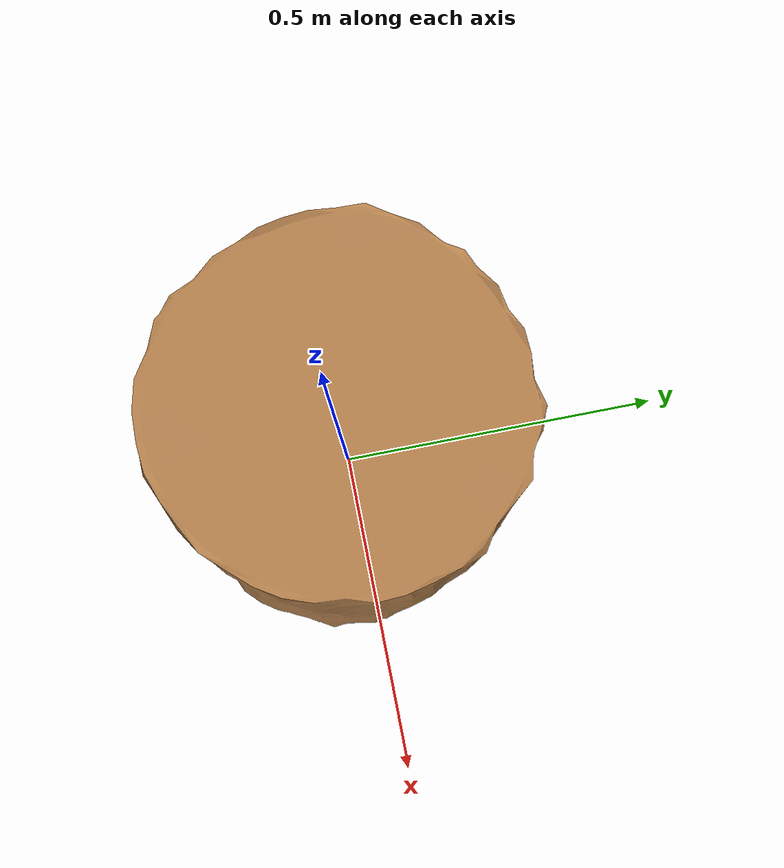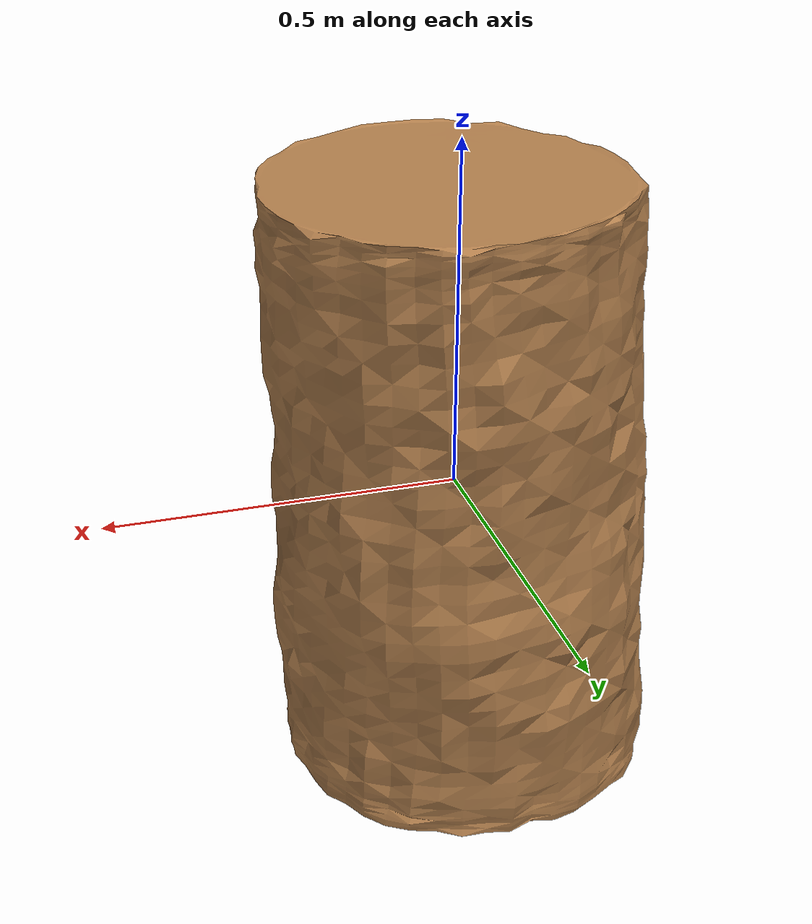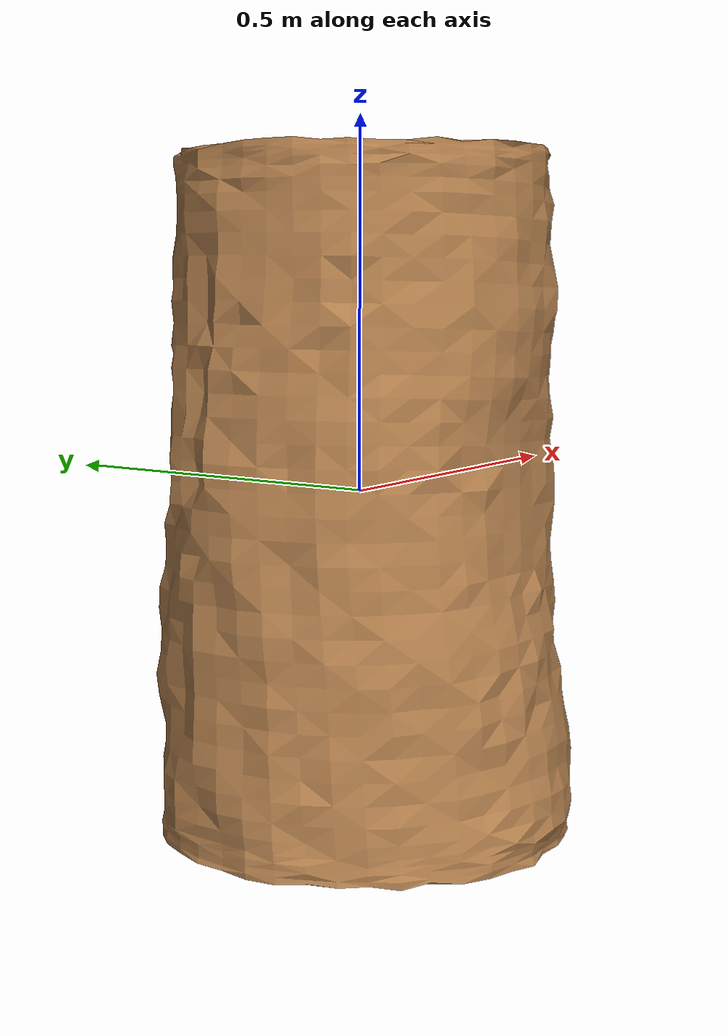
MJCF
<mujoco model="wooden_log">
	<compiler angle="radian" meshdir="../meshes/" texturedir="../textures/" autolimits="true" inertiafromgeom="false"/>
	<asset>
		<texture name="wooden_log_visual" type="2d" file="WoodenLog_Diffuse_8K.png" />
		<material name="wooden_log_visual" texture="wooden_log_visual" />
		<mesh name="WoodenLog" file="obj/WoodenLog.obj" />
		<mesh name="UCX_WoodenLog_001" file="stl/WoodenLog.stl" />
	</asset>
	<default>
		<default class="visual">
			<geom contype="0" conaffinity="0" />
		</default>
		<default class="collision">
			<geom rgba="1.0 0.0 0.0 0.0" />
		</default>
	</default>
	<worldbody>
		<body name="wooden_log">
			<freejoint />
			<inertial mass="182.78973388671875" pos="-0.002206541830673814 -0.003549989778548479 -0.008434557355940342" quat="0.6179027557373047 -0.2879410982131958 0.6774457693099976 0.2763211131095886" diaginertia="5.944240093231201 15.27294921875 15.374651908874512"/>
			<geom type="mesh" mesh="UCX_WoodenLog_001" mass="1" friction="0.5" solimp="0.95 0.95 0.005" solref="0.03 1" class="collision" condim="6" />
			<geom type="mesh" mesh="WoodenLog" material="wooden_log_visual" class="visual"/>
		</body>
	</worldbody>
</mujoco>
